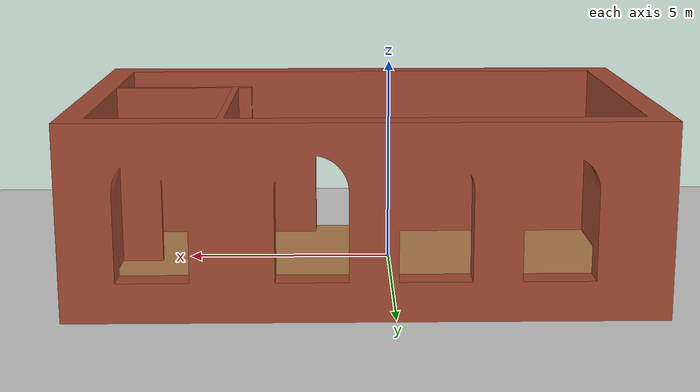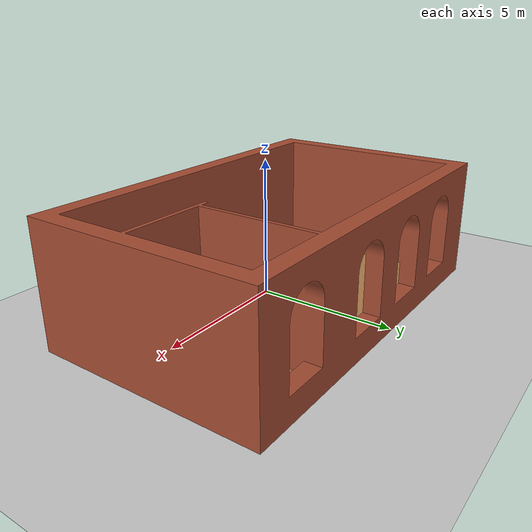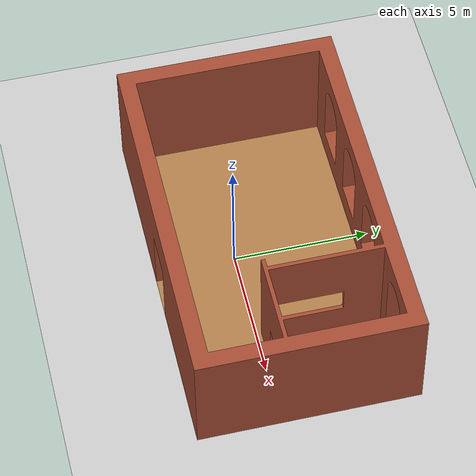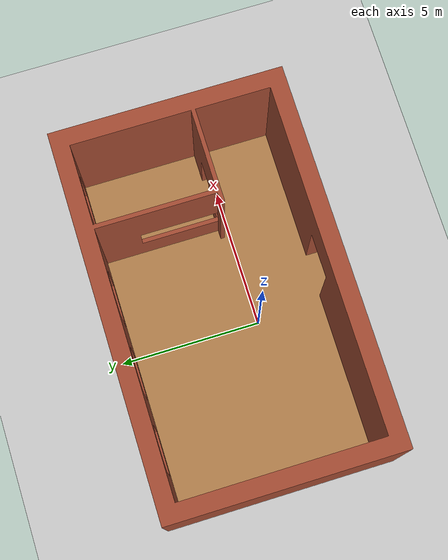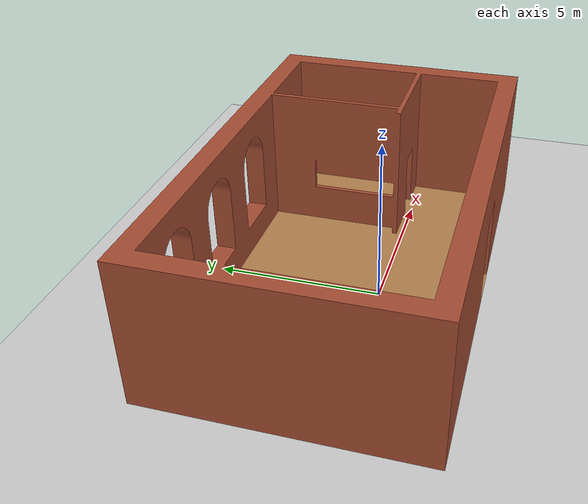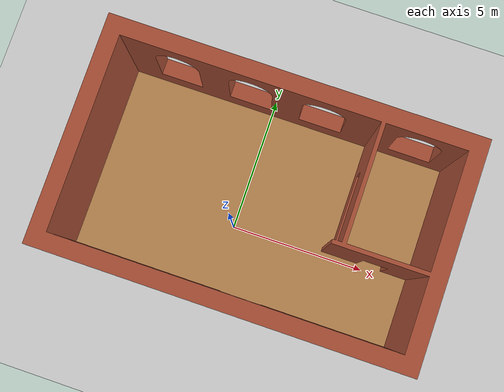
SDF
<?xml version="1.0" ?>
<sdf version="1.5">
  <world name="default">
    <!-- A global light source -->
    <include>
      <uri>model://sun</uri>
    </include>
    <!-- A ground plane -->
    <include>
      <uri>model://ground_plane</uri>
    </include>

    <physics name='default_physics' default='0' type='ode'>
      <gravity>0 0 -9.8066</gravity>
      <ode>
        <solver>
          <type>quick</type>
          <iters>10</iters>
          <sor>1.3</sor>
          <use_dynamic_moi_rescaling>0</use_dynamic_moi_rescaling>
        </solver>
        <constraints>
          <cfm>0</cfm>
          <erp>0.2</erp>
          <contact_max_correcting_vel>100</contact_max_correcting_vel>
          <contact_surface_layer>0.001</contact_surface_layer>
        </constraints>
      </ode>
      <max_step_size>0.004</max_step_size>
      <real_time_factor>1</real_time_factor>
      <real_time_update_rate>250</real_time_update_rate>
      <magnetic_field>6.0e-6 2.3e-5 -4.2e-5</magnetic_field>
    </physics>

    <include>
      <name>Walls</name>
      <uri>model://leoc6_walls</uri>
      <pose>-6 -3 0 0 0 0</pose>
    </include>

    <model name='Floor'>
      <static>true</static>
      <pose> 0.7 1 0 0 0 0 </pose>
      <link name='link'>

        <visual name='visual'>
          <geometry>
            <box>
              <size>13 8 0.001</size>
            </box>
          </geometry>
          <material>
            <script>
              <name>Gazebo/WoodFloor</name>
              <uri>file://media/materials/scripts/gazebo.material</uri>
            </script>
          </material>
        </visual>

        <collision name='collision'>
          <geometry>
            <box>
              <size>1 1 1</size>
            </box>
          </geometry>
        </collision>
      </link>
  </model>

  </world>
</sdf>

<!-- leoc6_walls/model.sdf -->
<sdf version='1.7'>
  <model name='Walls'>
    <static>true</static>
    <link name='link'>

      <visual name='visual'>
        <geometry>
          <mesh>
            <uri>model://leoc6_walls/meshes/LEOC6.dae</uri>
          </mesh>
        </geometry>
        <material>
          <script>
            <name>Gazebo/Bricks</name>
            <uri>file://media/materials/scripts/gazebo.material</uri>
          </script>
        </material>
      </visual>

      <collision name='collision'>
        <geometry>
          <mesh>
            <uri>model://leoc6_walls/meshes/LEOC6.dae</uri>
          </mesh>
        </geometry>
      </collision>
    </link>

  </model>

</sdf>
